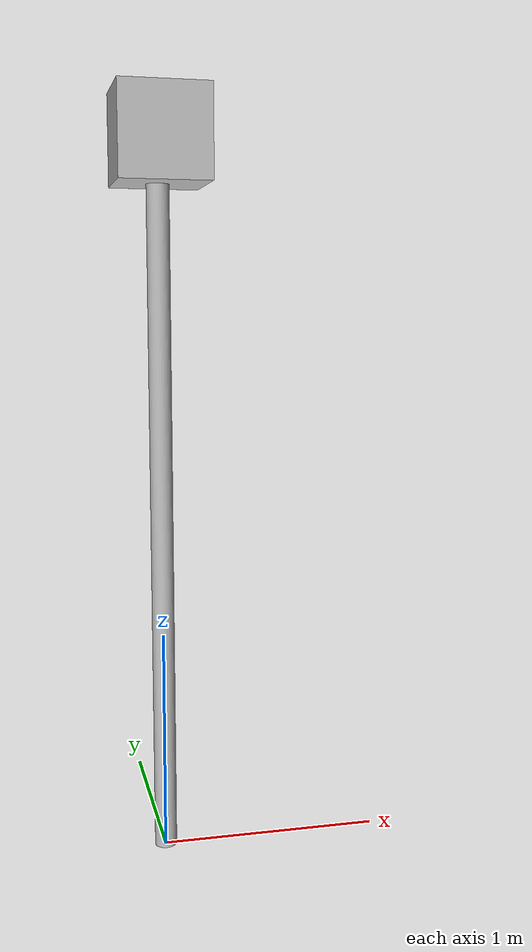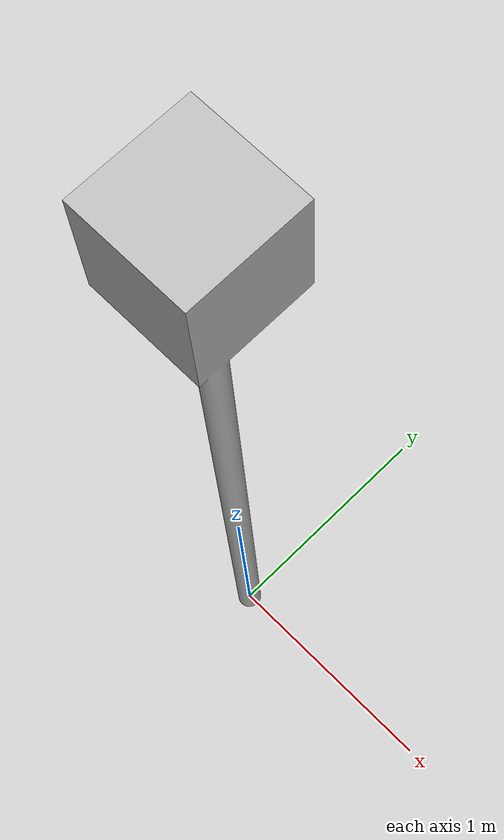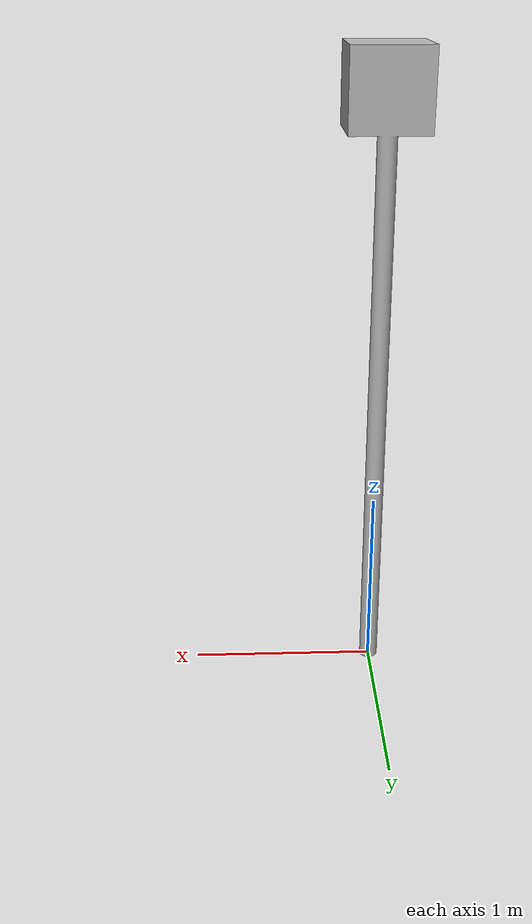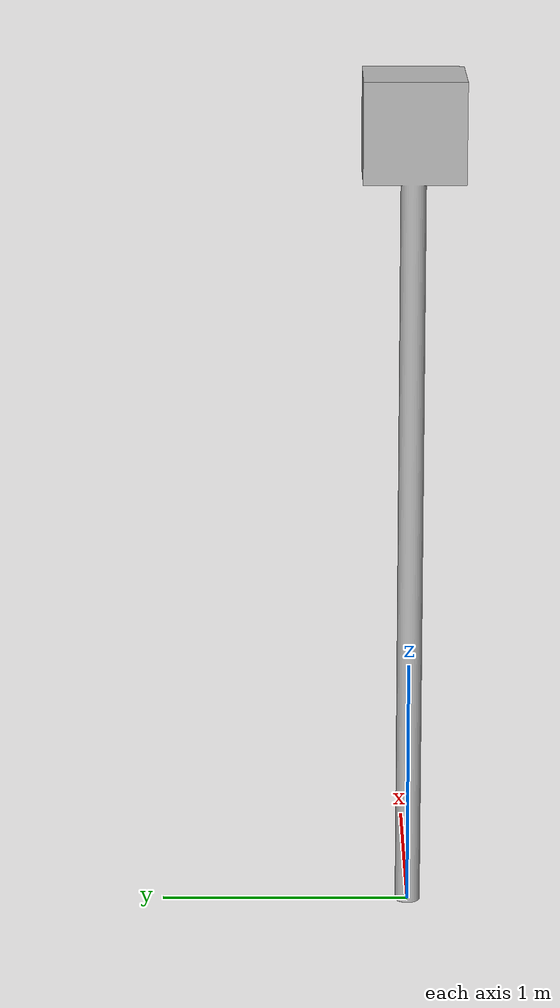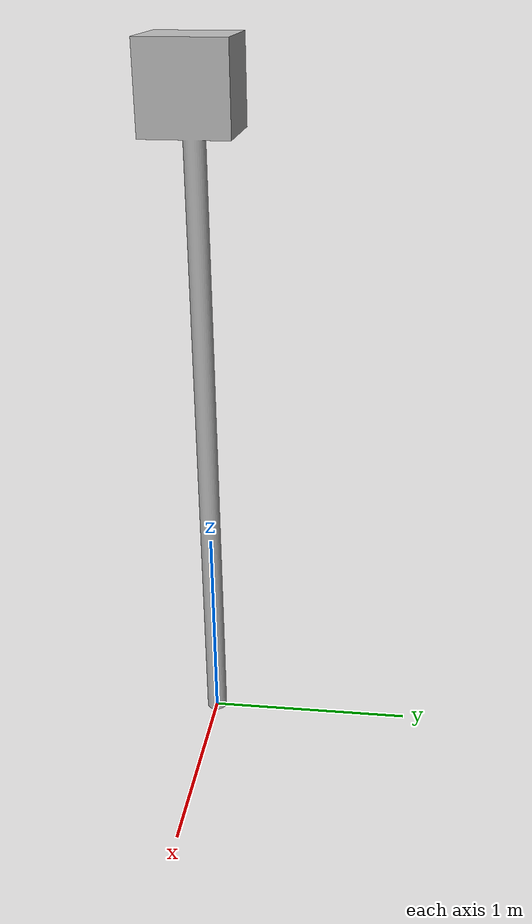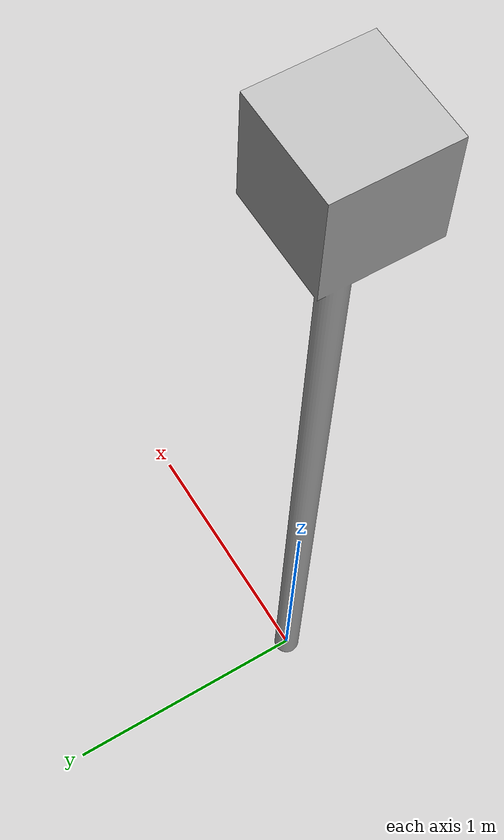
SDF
<?xml version="1.0" ?>
<sdf version="1.5">
  <model name="start_aruco">
    <static>true</static>
    <link name="link">
      <collision name="surface">
        <pose>0 0 0 0 0 0</pose>
        <geometry>
          <mesh>
          <uri>model://start_pole/meshes/start_pole.dae</uri>
          </mesh>
        </geometry>
      </collision>

      <visual name="visual">
        <geometry>
          <mesh>
            <uri>model://start_pole/meshes/start_pole.dae</uri>
          </mesh>
        </geometry>
      </visual>
    </link>
  </model>
</sdf>
